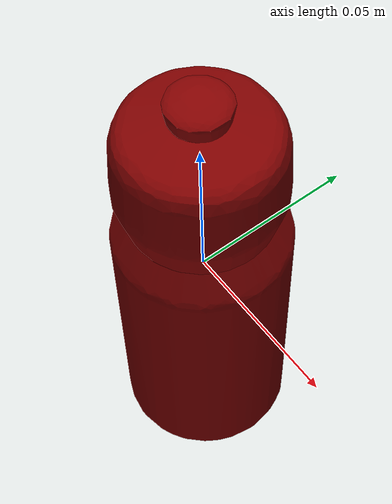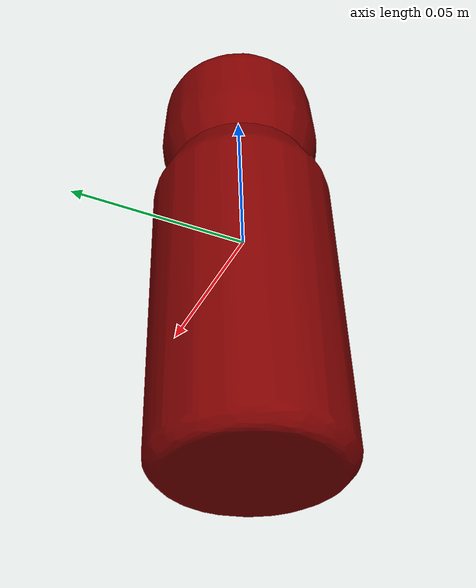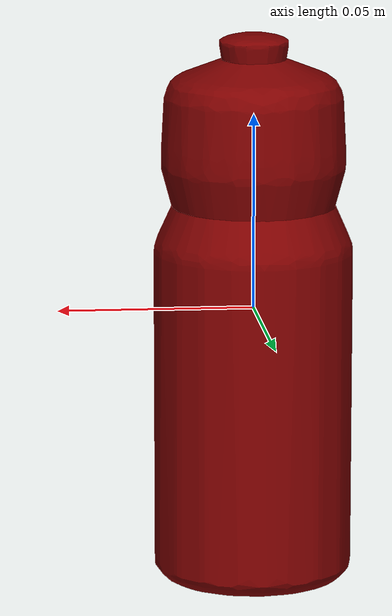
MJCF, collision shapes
<?xml version='1.0' encoding='utf-8'?>
<mujoco model="water_bottle_19">
  <asset>
    <mesh file="visual/model_normalized_0.obj" name="model_normalized_0_vis" scale="0.14 0.14 0.14" refquat="1.0 0.0 0.0 0.0" />
    <texture type="2d" name="image0" file="visual/image0.png" />
    <material name="SM_WaterBottle_MAT" texture="image0" specular="0.5" shininess="0.25" />
    <mesh file="collision/collision_mesh_collision_0.obj" name="water_collision_mesh_0" scale="0.14 0.14 0.14" refquat="1.0 0.0 0.0 0.0" />
    <mesh file="collision/collision_mesh_collision_1.obj" name="water_collision_mesh_1" scale="0.14 0.14 0.14" refquat="1.0 0.0 0.0 0.0" />
    <mesh file="collision/collision_mesh_collision_2.obj" name="water_collision_mesh_2" scale="0.14 0.14 0.14" refquat="1.0 0.0 0.0 0.0" />
    </asset>
  <default>
    <default class="region">
      <geom group="1" conaffinity="0" contype="0" rgba="0 1 0 0" />
      </default>
    <default class="collision">
      <geom group="0" rgba="0.5 0 0 0.5" density="1000.0" />
      </default>
    </default>
  <worldbody>
    <body>
      <body name="object">
        <geom solimp="0.998 0.998 0.001" solref="0.001 1" density="100" friction="0.95 0.3 0.1" type="mesh" mesh="model_normalized_0_vis" conaffinity="0" contype="0" group="1" material="SM_WaterBottle_MAT" />
        <geom class="region" name="reg_bbox" type="box" pos="0.00014666189999999857 -6.879459999999921e-05 -0.0006182476999999978" size="0.024537052400000002 0.024399474400000003 0.06938175230000002" />
        <geom mesh="water_collision_mesh_0" type="mesh" class="collision" />
        <geom mesh="water_collision_mesh_1" type="mesh" class="collision" />
        <geom mesh="water_collision_mesh_2" type="mesh" class="collision" />
        </body>
      </body>
    </worldbody>
  </mujoco>
